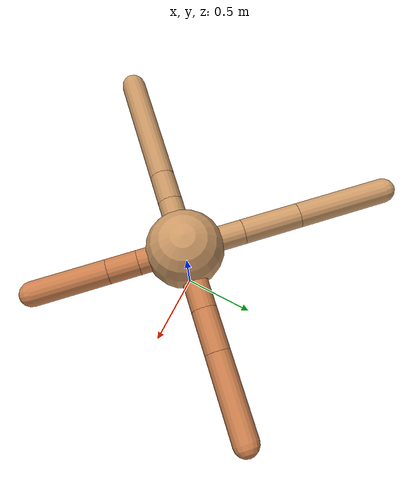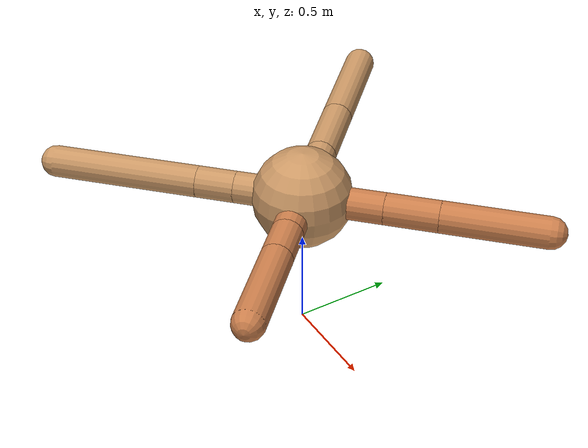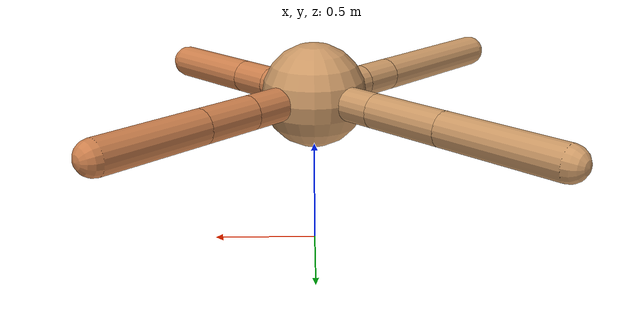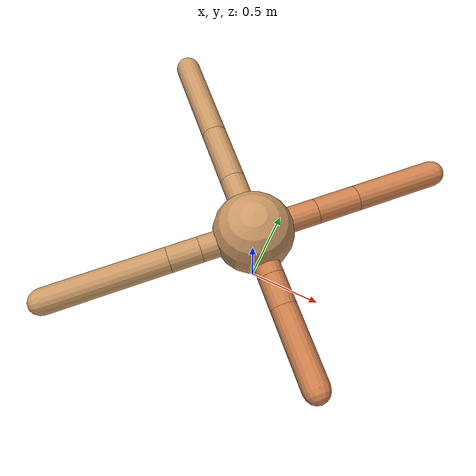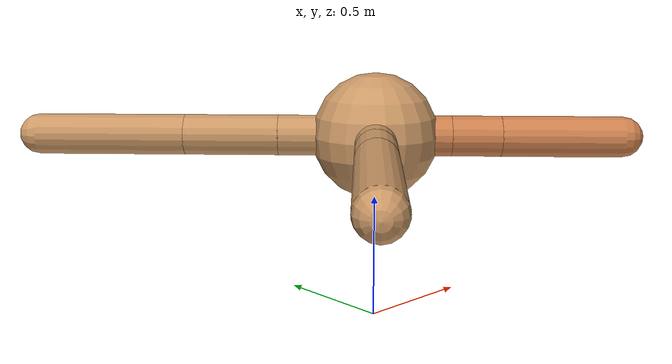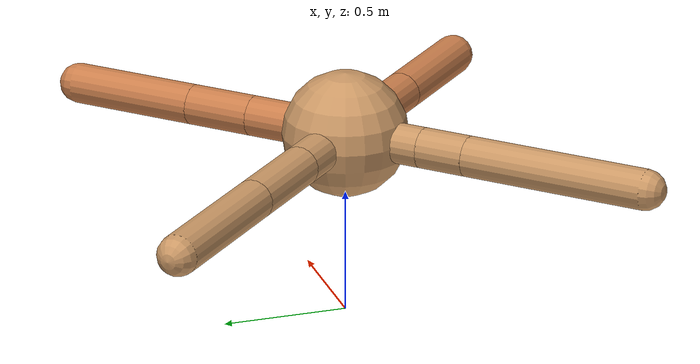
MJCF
<mujoco model="ant">
  <compiler angle="degree" coordinate="local" inertiafromgeom="true" />
  <option integrator="RK4" timestep="0.01" />
  <custom>
    <numeric data="0.0 0.0 0.55 1.0 0.0 0.0 0.0 0.0 1.0 0.0 -1.0 0.0 -1.0 0.0 1.0" name="init_qpos" />
  </custom>
  <default>
    <joint armature="1" damping="1" limited="true" />
    <geom conaffinity="0" condim="3" density="5.0" friction="1.5 0.1 0.1" margin="0.01" rgba="0.8 0.6 0.4 1" />
  </default>
  <worldbody>
    <body name="torso" pos="0 0 0.75">
      <geom name="torso_geom" pos="0 0 0" size="0.25" type="sphere" />

      <body name="front_left_leg" pos="0 0 0">
        <geom fromto="0.0 0.0 0.0 0.2883338396366861 0.2883338396366861 0.0" name="aux_1_geom" size="0.08" type="capsule" rgba=".8 .5 .3 1" />
        <body name="aux_1" pos="0.2883338396366861 0.2883338396366861 0.0">
          <joint axis="0 0 1" name="hip_1" pos="0.0 0.0 0.0" range="-40 40" type="hinge" />
          <geom fromto="0.0 0.0 0.0 0.18979621065239807 0.18979621065239807 0.0" name="left_leg_geom" size="0.08" type="capsule" rgba=".8 .5 .3 1" />
          <body pos="0.18979621065239807 0.18979621065239807 0.0" name="front_left_foot">
            <joint axis="-1 1 0" name="ankle_1" pos="0.0 0.0 0.0" range="30 100" type="hinge" />
            <geom fromto="0.0 0.0 0.0 0.3699611157776334 0.3699611157776334 0.0" name="left_ankle_geom" size="0.08" type="capsule" rgba=".8 .5 .3 1" />
          </body>
        </body>
      </body>
      <body name="front_right_leg" pos="0 0 0">
        <geom fromto="0.0 0.0 0.0 -0.27165094510561066 0.27165094510561066 0.0" name="aux_2_geom" size="0.08" type="capsule" />
        <body name="aux_2" pos="-0.27165094510561066 0.27165094510561066 0.0">
          <joint axis="0 0 1" name="hip_2" pos="0.0 0.0 0.0" range="-40 40" type="hinge" />
          <geom fromto="0.0 0.0 0.0 -0.2636830184865111 0.2636830184865111 0.0" name="right_leg_geom" size="0.08" type="capsule" />
          <body pos="-0.2636830184865111 0.2636830184865111 0.0" name="front_right_foot">
            <joint axis="1 1 0" name="ankle_2" pos="0.0 0.0 0.0" range="-100 -30" type="hinge" />
            <geom fromto="0.0 0.0 0.0 -0.4154669925855096 0.4154669925855096 0.0" name="right_ankle_geom" size="0.08" type="capsule" />
          </body>
        </body>
      </body>
      <body name="left_back_leg" pos="0 0 0">
        <geom fromto="0.0 0.0 0.0 -0.23821447817115918 -0.23821447817115918 0.0" name="aux_3_geom" size="0.08" type="capsule" />
        <body name="aux_3" pos="-0.23821447817115918 -0.23821447817115918 0.0">
          <joint axis="0 0 1" name="hip_3" pos="0.0 0.0 0.0" range="-40 40" type="hinge" />
          <geom fromto="0.0 0.0 0.0 -0.13716460563072755 -0.13716460563072755 0.0" name="back_leg_geom" size="0.08" type="capsule" />
          <body pos="-0.13716460563072755 -0.13716460563072755 0.0" name="left_back_foot">
            <joint axis="-1 1 0" name="ankle_3" pos="0.0 0.0 0.0" range="-100 -30" type="hinge" />
            <geom fromto="0.0 0.0 0.0 -0.5271141330594137 -0.5271141330594137 0.0" name="third_ankle_geom" size="0.08" type="capsule" />
          </body>
        </body>
      </body>
      <body name="right_back_leg" pos="0 0 0">
        <geom fromto="0.0 0.0 0.0 0.21224692478975551 -0.21224692478975551 0.0" name="aux_4_geom" size="0.08" type="capsule" rgba=".8 .5 .3 1" />
        <body name="aux_4" pos="0.21224692478975551 -0.21224692478975551 0.0">
          <joint axis="0 0 1" name="hip_4" pos="0.0 0.0 0.0" range="-40 40" type="hinge" />
          <geom fromto="0.0 0.0 0.0 0.13781166194153374 -0.13781166194153374 0.0" name="rightback_leg_geom" size="0.08" type="capsule" rgba=".8 .5 .3 1" />
          <body pos="0.13781166194153374 -0.13781166194153374 0.0" name="right_back_foot">
            <joint axis="1 1 0" name="ankle_4" pos="0.0 0.0 0.0" range="30 100" type="hinge" />
            <geom fromto="0.0 0.0 0.0 0.33456219047761615 -0.33456219047761615 0.0" name="fourth_ankle_geom" size="0.08" type="capsule" rgba=".8 .5 .3 1" />
          </body>
        </body>
      </body>
    </body>
  </worldbody>
  <actuator>
    <motor ctrllimited="true" ctrlrange="-1.0 1.0" joint="hip_4" gear="150" />
    <motor ctrllimited="true" ctrlrange="-1.0 1.0" joint="ankle_4" gear="150" />
    <motor ctrllimited="true" ctrlrange="-1.0 1.0" joint="hip_1" gear="150" />
    <motor ctrllimited="true" ctrlrange="-1.0 1.0" joint="ankle_1" gear="150" />
    <motor ctrllimited="true" ctrlrange="-1.0 1.0" joint="hip_2" gear="150" />
    <motor ctrllimited="true" ctrlrange="-1.0 1.0" joint="ankle_2" gear="150" />
    <motor ctrllimited="true" ctrlrange="-1.0 1.0" joint="hip_3" gear="150" />
    <motor ctrllimited="true" ctrlrange="-1.0 1.0" joint="ankle_3" gear="150" />
  </actuator>
</mujoco>
